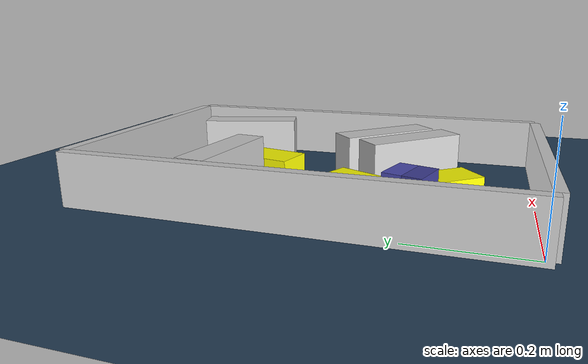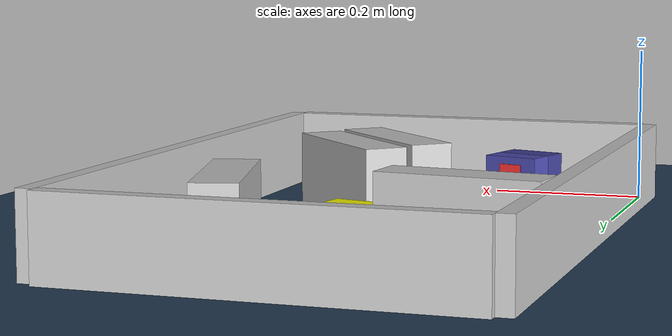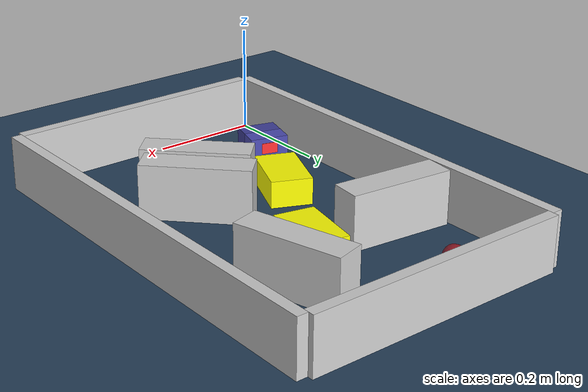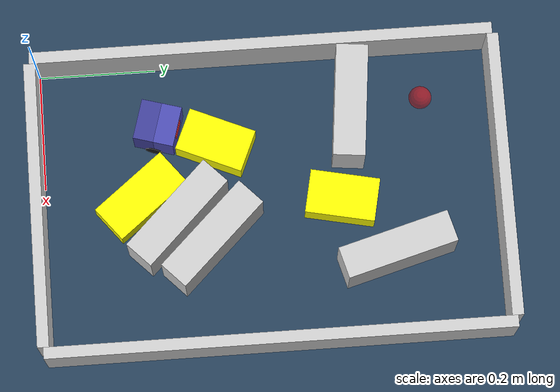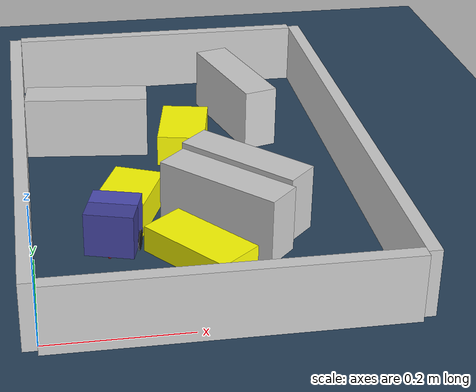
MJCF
<?xml version='1.0' encoding='utf-8'?>
<mujoco model="real_buildable">
  <compiler angle="degree" />
  <option timestep="0.002" integrator="implicitfast" iterations="100" cone="elliptic" />
  <default>
    <geom density="1" />
  </default>
  <asset>
    <texture builtin="gradient" height="3072" rgb1="0.3 0.5 0.7" rgb2="0 0 0" type="skybox" width="512" />
    <texture builtin="checker" height="300" mark="edge" markrgb="0.8 0.8 0.8" name="groundplane" rgb1="0.2 0.3 0.4" rgb2="0.1 0.2 0.3" type="2d" width="300" />
    <material name="groundplane" reflectance="0.2" texrepeat="5 5" texture="groundplane" texuniform="true" />
  </asset>
  <worldbody>
    <light dir="0 0 -1" directional="true" pos="0 0 1.5" />
    <geom name="floor" type="plane" condim="4" friction="0.5 0.005 0.001" material="groundplane" size="0 0 0.05" />
    <body name="walls">
      <geom name="wall_boundary_left" type="box" condim="4" friction="1.0 0.005 0.0001" rgba="0.8 0.8 0.8 1" pos="-0.010000 0.387500 0.050000" euler="0 0 0.000000" size="0.010000 0.397500 0.050000" />
      <geom name="wall_boundary_right" type="box" condim="4" friction="1.0 0.005 0.0001" rgba="0.8 0.8 0.8 1" pos="0.500000 0.387500 0.050000" euler="0 0 0.000000" size="0.010000 0.397500 0.050000" />
      <geom name="wall_boundary_bottom" type="box" condim="4" friction="1.0 0.005 0.0001" rgba="0.8 0.8 0.8 1" pos="0.245000 -0.010000 0.050000" euler="0 0 0.000000" size="0.245000 0.010000 0.050000" />
      <geom name="wall_boundary_top" type="box" condim="4" friction="1.0 0.005 0.0001" rgba="0.8 0.8 0.8 1" pos="0.245000 0.785000 0.050000" euler="0 0 0.000000" size="0.245000 0.010000 0.050000" />
      <geom name="wall_inner_1" type="box" condim="4" friction="1.0 0.005 0.0001" rgba="0.8 0.8 0.8 1" pos="0.276262 0.226942 0.050000" euler="0 0 -45.276897" size="0.097500 0.027500 0.050000" />
      <geom name="wall_inner_2" type="box" condim="4" friction="1.0 0.005 0.0001" rgba="0.8 0.8 0.8 1" pos="0.315867 0.283880 0.050000" euler="0 0 -45.842347" size="0.097500 0.027500 0.050000" />
      <geom name="wall_inner_3" type="box" condim="4" friction="1.0 0.005 0.0001" rgba="0.8 0.8 0.8 1" pos="0.100000 0.534000 0.050000" euler="0 0 174.100000" size="0.097500 0.027500 0.050000" />
      <geom name="wall_inner_4" type="box" condim="4" friction="1.0 0.005 0.0001" rgba="0.8 0.8 0.8 1" pos="0.356000 0.595000 0.050000" euler="0 0 105.500000" size="0.097500 0.027500 0.050000" />
    </body>
    <body name="car" pos="0.11324062417029576 0.20212347329762648 0.01" quat="0.7992568209331059 0 0 0.60098962902191999">
      <freejoint name="car_freejoint" />
      <inertial pos="0 0 0.0375" mass="0.35" diaginertia="0.000266 0.000266 0.000286" />
      <geom name="front_chassis_collision" type="box" pos="0.0175 0 0.0375" size="0.0175 0.035 0.0325" rgba="0.3 0.3 0.7 1" />
      <geom name="rear_chassis_collision" type="box" pos="-0.0175 0 0.0375" size="0.0175 0.035 0.0325" rgba="0.25 0.25 0.6 1" />
      <geom name="front_marker" type="box" pos="0.034 0 0.0505" size="0.002 0.015 0.01" rgba="1 0.2 0.2 1" contype="0" conaffinity="0" />
      <body name="rear_support_body" pos="-0.03 0 0.0025">
        <joint name="rear_caster_joint" type="ball" damping="0.0001" />
        <inertial pos="0 0 0" mass="0.025" diaginertia="0.000001 0.000001 0.000001" />
        <geom name="rear_support" type="sphere" pos="0 0 0" size="0.0025" friction="0 0 0" rgba="0.7 0.1 0.1 1" />
      </body>
      <body name="front_support_body" pos="0.03 0 0.0025">
        <joint name="front_caster_joint" type="ball" damping="0.0001" />
        <inertial pos="0 0 0" mass="0.025" diaginertia="0.000001 0.000001 0.000001" />
        <geom name="front_support" type="sphere" pos="0 0 0" size="0.0025" friction="0 0 0" rgba="0.1 0.7 0.1 1" />
      </body>
      <body name="left_wheel" pos="0 0.0375 0.015">
        <inertial pos="0 0 0" mass="0.05" diaginertia="0.000003 0.000006 0.000003" />
        <joint name="left_wheel_joint" type="hinge" axis="0 1 0" damping="0.01" armature="0.0001" />
        <geom name="left_wheel_collision" type="cylinder" size="0.015 0.0005" euler="90 0 0" rgba="0.1 0.1 0.1 1" />
      </body>
      <body name="right_wheel" pos="0 -0.0375 0.015">
        <inertial pos="0 0 0" mass="0.05" diaginertia="0.000003 0.000006 0.000003" />
        <joint name="right_wheel_joint" type="hinge" axis="0 1 0" damping="0.01" armature="0.0001" />
        <geom name="right_wheel_collision" type="cylinder" size="0.015 0.0005" euler="90 0 0" rgba="0.1 0.1 0.1 1" />
      </body>
    </body>
    <body name="obstacle_0_movable">
      <geom name="obstacle_0_movable" condim="4" pos="0.14259049321512565 0.29900233357081046 0.025000000000000001" friction="1 0.005 0.0001" rgba="1 1 0 1" size="0.037500 0.060000 0.025000" type="box" mass="0.1" quat="0.20314614087240815 0 0 0.97914842871172891" />
      <joint type="free" />
    </body>
    <body name="obstacle_1_movable">
      <geom name="obstacle_1_movable" condim="4" pos="0.25499999999999967 0.50999999999999968 0.025000000000000001" friction="1 0.005 0.0001" rgba="1 1 0 1" size="0.037500 0.060000 0.025000" type="box" mass="0.1" quat="0.99470281711717423 0 0 -0.10279253678724681" />
      <joint type="free" />
    </body>
    <body name="obstacle_2_movable">
      <geom name="obstacle_2_movable" condim="4" pos="0.22979800000000009 0.16561200000000015 0.02" friction="1 0.005 0.0001" rgba="1 1 0 1" size="0.035000 0.075000 0.020000" type="box" mass="0.1" quat="0.94381067985818867 0 0 0.33048661180995487" />
      <joint type="free" />
    </body>
    <site name="goal" type="sphere" pos="0.080000 0.660000 0.0" size="0.02" rgba="1 0 0 0.5" />
  </worldbody>
  <actuator>
    <velocity name="left_wheel_drive" joint="left_wheel_joint" ctrlrange="-25 25" kv="0.75" forcerange="-0.5 0.5" />
    <velocity name="right_wheel_drive" joint="right_wheel_joint" ctrlrange="-25 25" kv="0.75" forcerange="-0.5 0.5" />
  </actuator>
</mujoco>
